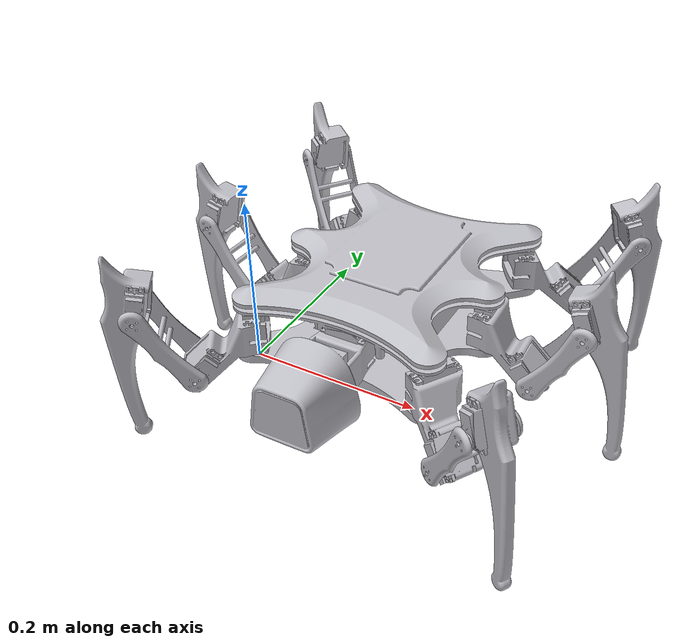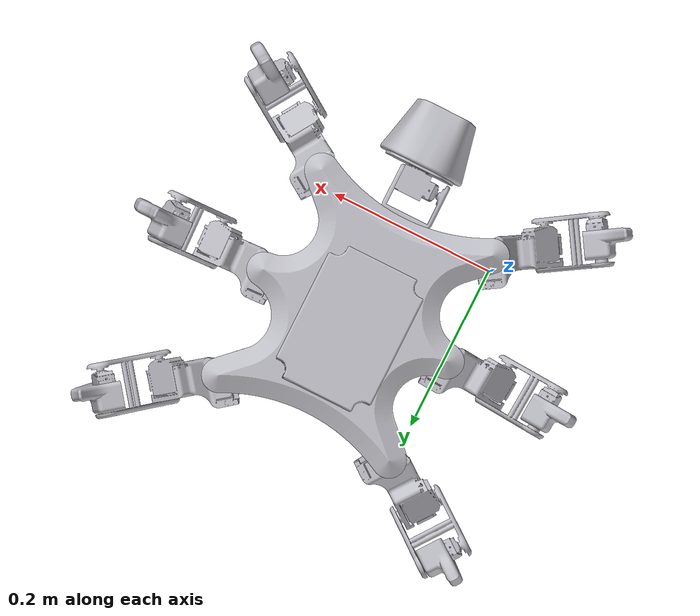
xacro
<?xml version="1.0" ?>
<robot name="Hexapod_Robot" xmlns:xacro="http://www.ros.org/wiki/xacro">

<xacro:include filename="$(find Hexapod_Robot_description)/urdf/materials.xacro" />
<xacro:include filename="$(find Hexapod_Robot_description)/urdf/Hexapod_Robot.ros2control" />
<xacro:include filename="$(find Hexapod_Robot_description)/urdf/Hexapod_Robot.gazebo" />

<!-- Massless root frame at ground level. KDL cannot have inertia on the root
     link, and controllers/nav expect a base_footprint; base_link carries the
     real mass and hangs off this. -->
<link name="base_footprint"/>

<joint name="base_footprint_joint" type="fixed">
  <origin xyz="0 0 0" rpy="0 0 0"/>
  <parent link="base_footprint"/>
  <child link="base_link"/>
</joint>

<link name="base_link">
  <inertial>
    <origin xyz="0.11456741037796862 0.1087879851109223 0.05265501684792295" rpy="0 0 0"/>
    <mass value="11.924165027690854"/>
    <inertia ixx="0.104112" iyy="0.070049" izz="0.13759" ixy="-7e-06" iyz="-0.000382" ixz="-0.000256"/>
  </inertial>
  <visual>
    <origin xyz="0 0 0" rpy="0 0 0"/>
    <geometry>
      <mesh filename="file://$(find Hexapod_Robot_description)/meshes/base_link.stl" scale="0.001 0.001 0.001"/>
    </geometry>
    <material name="silver"/>
  </visual>
  <collision>
    <origin xyz="0 0 0" rpy="0 0 0"/>
    <geometry>
      <mesh filename="file://$(find Hexapod_Robot_description)/meshes/base_link.stl" scale="0.001 0.001 0.001"/>
    </geometry>
  </collision>
</link>

<link name="left_hip_swing_forward_back1_link_1">
  <inertial>
    <origin xyz="0.02722355354628611 -0.005765123935482315 -0.05103630040946177" rpy="0 0 0"/>
    <mass value="1.0039554041082914"/>
    <inertia ixx="0.00093" iyy="0.00117" izz="0.001002" ixy="0.00025" iyz="-0.000246" ixz="0.00046"/>
  </inertial>
  <visual>
    <origin xyz="-0.223004 0.015003 -0.080704" rpy="0 0 0"/>
    <geometry>
      <mesh filename="file://$(find Hexapod_Robot_description)/meshes/left_hip_swing_forward_back1_link_1.stl" scale="0.001 0.001 0.001"/>
    </geometry>
    <material name="silver"/>
  </visual>
  <collision>
    <origin xyz="-0.223004 0.015003 -0.080704" rpy="0 0 0"/>
    <geometry>
      <mesh filename="file://$(find Hexapod_Robot_description)/meshes/left_hip_swing_forward_back1_link_1.stl" scale="0.001 0.001 0.001"/>
    </geometry>
  </collision>
</link>

<link name="left_hip_swing_forward_back2_link_1">
  <inertial>
    <origin xyz="0.026458833582975738 0.008619073243331582 -0.05103630040946182" rpy="0 0 0"/>
    <mass value="1.0039554041082914"/>
    <inertia ixx="0.000773" iyy="0.001327" izz="0.001002" ixy="2.1e-05" iyz="1.7e-05" ixz="0.000521"/>
  </inertial>
  <visual>
    <origin xyz="-0.231004 -0.114997 -0.080704" rpy="0 0 0"/>
    <geometry>
      <mesh filename="file://$(find Hexapod_Robot_description)/meshes/left_hip_swing_forward_back2_link_1.stl" scale="0.001 0.001 0.001"/>
    </geometry>
    <material name="silver"/>
  </visual>
  <collision>
    <origin xyz="-0.231004 -0.114997 -0.080704" rpy="0 0 0"/>
    <geometry>
      <mesh filename="file://$(find Hexapod_Robot_description)/meshes/left_hip_swing_forward_back2_link_1.stl" scale="0.001 0.001 0.001"/>
    </geometry>
  </collision>
</link>

<link name="left_hip_swing_forward_back3_link_1">
  <inertial>
    <origin xyz="0.02332648436599366 0.015173456755262688 -0.051036300409461735" rpy="0 0 0"/>
    <mass value="1.0039554041082914"/>
    <inertia ixx="0.000799" iyy="0.0013" izz="0.001002" ixy="-0.00012" iyz="0.000151" ixz="0.000499"/>
  </inertial>
  <visual>
    <origin xyz="-0.223004 -0.244997 -0.080704" rpy="0 0 0"/>
    <geometry>
      <mesh filename="file://$(find Hexapod_Robot_description)/meshes/left_hip_swing_forward_back3_link_1.stl" scale="0.001 0.001 0.001"/>
    </geometry>
    <material name="silver"/>
  </visual>
  <collision>
    <origin xyz="-0.223004 -0.244997 -0.080704" rpy="0 0 0"/>
    <geometry>
      <mesh filename="file://$(find Hexapod_Robot_description)/meshes/left_hip_swing_forward_back3_link_1.stl" scale="0.001 0.001 0.001"/>
    </geometry>
  </collision>
</link>

<link name="left_tibia_knee1_link_1">
  <inertial>
    <origin xyz="0.03192935357853338 0.01026326859326153 0.04206380119937546" rpy="0 0 0"/>
    <mass value="0.23887332143395074"/>
    <inertia ixx="0.000385" iyy="0.000312" izz="0.00027" ixy="-2.8e-05" iyz="3.8e-05" ixz="-0.00012"/>
  </inertial>
  <visual>
    <origin xyz="-0.278581 0.064128 -0.005487" rpy="0 0 0"/>
    <geometry>
      <mesh filename="file://$(find Hexapod_Robot_description)/meshes/left_tibia_knee1_link_1.stl" scale="0.001 0.001 0.001"/>
    </geometry>
    <material name="silver"/>
  </visual>
  <collision>
    <origin xyz="-0.278581 0.064128 -0.005487" rpy="0 0 0"/>
    <geometry>
      <mesh filename="file://$(find Hexapod_Robot_description)/meshes/left_tibia_knee1_link_1.stl" scale="0.001 0.001 0.001"/>
    </geometry>
  </collision>
</link>

<link name="left_tibia_knee2_link_1">
  <inertial>
    <origin xyz="0.022519573557786943 0.024852970410265546 0.04206380119937539" rpy="0 0 0"/>
    <mass value="0.23887332143395074"/>
    <inertia ixx="0.000391" iyy="0.000306" izz="0.00027" ixy="1.8e-05" iyz="-2.7e-05" ixz="-0.000123"/>
  </inertial>
  <visual>
    <origin xyz="-0.303698 -0.100242 -0.005487" rpy="0 0 0"/>
    <geometry>
      <mesh filename="file://$(find Hexapod_Robot_description)/meshes/left_tibia_knee2_link_1.stl" scale="0.001 0.001 0.001"/>
    </geometry>
    <material name="silver"/>
  </visual>
  <collision>
    <origin xyz="-0.303698 -0.100242 -0.005487" rpy="0 0 0"/>
    <geometry>
      <mesh filename="file://$(find Hexapod_Robot_description)/meshes/left_tibia_knee2_link_1.stl" scale="0.001 0.001 0.001"/>
    </geometry>
  </collision>
</link>

<link name="left_tibia_knee3_link_1">
  <inertial>
    <origin xyz="0.0202508543973397 0.03234772001410513 0.03791633557601756" rpy="0 0 0"/>
    <mass value="0.23887332143395074"/>
    <inertia ixx="0.000347" iyy="0.000313" izz="0.000307" ixy="2.2e-05" iyz="-6.3e-05" ixz="-0.000123"/>
  </inertial>
  <visual>
    <origin xyz="-0.29704 -0.24956 -0.005487" rpy="0 0 0"/>
    <geometry>
      <mesh filename="file://$(find Hexapod_Robot_description)/meshes/left_tibia_knee3_link_1.stl" scale="0.001 0.001 0.001"/>
    </geometry>
    <material name="silver"/>
  </visual>
  <collision>
    <origin xyz="-0.29704 -0.24956 -0.005487" rpy="0 0 0"/>
    <geometry>
      <mesh filename="file://$(find Hexapod_Robot_description)/meshes/left_tibia_knee3_link_1.stl" scale="0.001 0.001 0.001"/>
    </geometry>
  </collision>
</link>

<link name="femur_lift_leg3_link_1">
  <inertial>
    <origin xyz="-0.0001900785298836194 0.02982560287376279 -0.027371578569205093" rpy="0 0 0"/>
    <mass value="0.9037080537423837"/>
    <inertia ixx="0.003075" iyy="0.003177" izz="0.000258" ixy="-1.5e-05" iyz="7.2e-05" ixz="0.000391"/>
  </inertial>
  <visual>
    <origin xyz="-0.355 -0.276954 -0.082278" rpy="0 0 0"/>
    <geometry>
      <mesh filename="file://$(find Hexapod_Robot_description)/meshes/femur_lift_leg3_link_1.stl" scale="0.001 0.001 0.001"/>
    </geometry>
    <material name="silver"/>
  </visual>
  <collision>
    <origin xyz="-0.355 -0.276954 -0.082278" rpy="0 0 0"/>
    <geometry>
      <mesh filename="file://$(find Hexapod_Robot_description)/meshes/femur_lift_leg3_link_1.stl" scale="0.001 0.001 0.001"/>
    </geometry>
  </collision>
</link>

<link name="femur_lift_leg2_link_1">
  <inertial>
    <origin xyz="0.010864236412003236 0.030556222245335357 -0.02526616790998558" rpy="0 0 0"/>
    <mass value="0.9037080537423837"/>
    <inertia ixx="0.002918" iyy="0.003177" izz="0.000415" ixy="-6e-06" iyz="5.3e-05" ixz="0.000757"/>
  </inertial>
  <visual>
    <origin xyz="-0.356074 -0.108402 -0.090358" rpy="0 0 0"/>
    <geometry>
      <mesh filename="file://$(find Hexapod_Robot_description)/meshes/femur_lift_leg2_link_1.stl" scale="0.001 0.001 0.001"/>
    </geometry>
    <material name="silver"/>
  </visual>
  <collision>
    <origin xyz="-0.356074 -0.108402 -0.090358" rpy="0 0 0"/>
    <geometry>
      <mesh filename="file://$(find Hexapod_Robot_description)/meshes/femur_lift_leg2_link_1.stl" scale="0.001 0.001 0.001"/>
    </geometry>
  </collision>
</link>

<link name="femur_lift_leg1_link_1">
  <inertial>
    <origin xyz="0.02456260276582528 0.020645162698077882 -0.025263963458400346" rpy="0 0 0"/>
    <mass value="0.9037080537423837"/>
    <inertia ixx="0.002978" iyy="0.003117" izz="0.000415" ixy="0.000109" iyz="-0.000333" ixz="0.000682"/>
  </inertial>
  <visual>
    <origin xyz="-0.328021 0.08325 -0.090358" rpy="0 0 0"/>
    <geometry>
      <mesh filename="file://$(find Hexapod_Robot_description)/meshes/femur_lift_leg1_link_1.stl" scale="0.001 0.001 0.001"/>
    </geometry>
    <material name="silver"/>
  </visual>
  <collision>
    <origin xyz="-0.328021 0.08325 -0.090358" rpy="0 0 0"/>
    <geometry>
      <mesh filename="file://$(find Hexapod_Robot_description)/meshes/femur_lift_leg1_link_1.stl" scale="0.001 0.001 0.001"/>
    </geometry>
  </collision>
</link>

<link name="right_hip_swing_forward_back1_link_1">
  <inertial>
    <origin xyz="-0.024803341322268392 -0.012598853342512576 -0.05113326775181333" rpy="0 0 0"/>
    <mass value="1.0061122351650025"/>
    <inertia ixx="0.001069" iyy="0.001028" izz="0.000999" ixy="-0.000275" iyz="-0.000354" ixz="-0.00038"/>
  </inertial>
  <visual>
    <origin xyz="-0.007004 0.015003 -0.080704" rpy="0 0 0"/>
    <geometry>
      <mesh filename="file://$(find Hexapod_Robot_description)/meshes/right_hip_swing_forward_back1_link_1.stl" scale="0.001 0.001 0.001"/>
    </geometry>
    <material name="silver"/>
  </visual>
  <collision>
    <origin xyz="-0.007004 0.015003 -0.080704" rpy="0 0 0"/>
    <geometry>
      <mesh filename="file://$(find Hexapod_Robot_description)/meshes/right_hip_swing_forward_back1_link_1.stl" scale="0.001 0.001 0.001"/>
    </geometry>
  </collision>
</link>

<link name="right_hip_swing_forward_back2_link_1">
  <inertial>
    <origin xyz="-0.027779755467817333 0.0014907000781658047 -0.051133267751813566" rpy="0 0 0"/>
    <mass value="1.0061122351650025"/>
    <inertia ixx="0.00082" iyy="0.001277" izz="0.000999" ixy="-0.000155" iyz="-0.000117" ixz="-0.000506"/>
  </inertial>
  <visual>
    <origin xyz="0.000996 -0.114997 -0.080704" rpy="0 0 0"/>
    <geometry>
      <mesh filename="file://$(find Hexapod_Robot_description)/meshes/right_hip_swing_forward_back2_link_1.stl" scale="0.001 0.001 0.001"/>
    </geometry>
    <material name="silver"/>
  </visual>
  <collision>
    <origin xyz="0.000996 -0.114997 -0.080704" rpy="0 0 0"/>
    <geometry>
      <mesh filename="file://$(find Hexapod_Robot_description)/meshes/right_hip_swing_forward_back2_link_1.stl" scale="0.001 0.001 0.001"/>
    </geometry>
  </collision>
</link>

<link name="right_tibia_knee1_link_1">
  <inertial>
    <origin xyz="-0.03503037349570142 0.001013918465166172 0.040954233568781466" rpy="0 0 0"/>
    <mass value="0.23887342839275658"/>
    <inertia ixx="0.000359" iyy="0.000327" izz="0.00028" ixy="3.8e-05" iyz="7.1e-05" ixz="0.00011"/>
  </inertial>
  <visual>
    <origin xyz="0.033393 0.07637 -0.006083" rpy="0 0 0"/>
    <geometry>
      <mesh filename="file://$(find Hexapod_Robot_description)/meshes/right_tibia_knee1_link_1.stl" scale="0.001 0.001 0.001"/>
    </geometry>
    <material name="silver"/>
  </visual>
  <collision>
    <origin xyz="0.033393 0.07637 -0.006083" rpy="0 0 0"/>
    <geometry>
      <mesh filename="file://$(find Hexapod_Robot_description)/meshes/right_tibia_knee1_link_1.stl" scale="0.001 0.001 0.001"/>
    </geometry>
  </collision>
</link>

<link name="right_tibia_knee2_link_1">
  <inertial>
    <origin xyz="-0.029815774022840608 0.018077106294382014 0.040955750523917034" rpy="0 0 0"/>
    <mass value="0.23887342839275658"/>
    <inertia ixx="0.000384" iyy="0.000302" izz="0.00028" ixy="5e-06" iyz="6e-06" ixz="0.00013"/>
  </inertial>
  <visual>
    <origin xyz="0.066664 -0.08205 -0.006083" rpy="0 0 0"/>
    <geometry>
      <mesh filename="file://$(find Hexapod_Robot_description)/meshes/right_tibia_knee2_link_1.stl" scale="0.001 0.001 0.001"/>
    </geometry>
    <material name="silver"/>
  </visual>
  <collision>
    <origin xyz="0.066664 -0.08205 -0.006083" rpy="0 0 0"/>
    <geometry>
      <mesh filename="file://$(find Hexapod_Robot_description)/meshes/right_tibia_knee2_link_1.stl" scale="0.001 0.001 0.001"/>
    </geometry>
  </collision>
</link>

<link name="right_hip_swing_forward_back3_link_1">
  <inertial>
    <origin xyz="-0.027537261742744325 0.003954252827174848 -0.05113326775181348" rpy="0 0 0"/>
    <mass value="1.0061122351650025"/>
    <inertia ixx="0.000796" iyy="0.001301" izz="0.000999" ixy="-0.000113" iyz="-7.1e-05" ixz="-0.000515"/>
  </inertial>
  <visual>
    <origin xyz="-0.007004 -0.244997 -0.080704" rpy="0 0 0"/>
    <geometry>
      <mesh filename="file://$(find Hexapod_Robot_description)/meshes/right_hip_swing_forward_back3_link_1.stl" scale="0.001 0.001 0.001"/>
    </geometry>
    <material name="silver"/>
  </visual>
  <collision>
    <origin xyz="-0.007004 -0.244997 -0.080704" rpy="0 0 0"/>
    <geometry>
      <mesh filename="file://$(find Hexapod_Robot_description)/meshes/right_hip_swing_forward_back3_link_1.stl" scale="0.001 0.001 0.001"/>
    </geometry>
  </collision>
</link>

<link name="right_tibia_knee3_link_1">
  <inertial>
    <origin xyz="-0.027980158894274215 0.02326756621286863 0.04094322521168447" rpy="0 0 0"/>
    <mass value="0.23887342839275658"/>
    <inertia ixx="0.000384" iyy="0.000302" izz="0.00028" ixy="-2e-06" iyz="-5e-06" ixz="0.00013"/>
  </inertial>
  <visual>
    <origin xyz="0.061333 -0.218018 -0.006083" rpy="0 0 0"/>
    <geometry>
      <mesh filename="file://$(find Hexapod_Robot_description)/meshes/right_tibia_knee3_link_1.stl" scale="0.001 0.001 0.001"/>
    </geometry>
    <material name="silver"/>
  </visual>
  <collision>
    <origin xyz="0.061333 -0.218018 -0.006083" rpy="0 0 0"/>
    <geometry>
      <mesh filename="file://$(find Hexapod_Robot_description)/meshes/right_tibia_knee3_link_1.stl" scale="0.001 0.001 0.001"/>
    </geometry>
  </collision>
</link>

<link name="femur_right_leg1_link_1">
  <inertial>
    <origin xyz="-0.023484497219367045 0.012827089337785716 -0.027978023883439902" rpy="0 0 0"/>
    <mass value="0.9038602883439664"/>
    <inertia ixx="0.003153" iyy="0.00313" izz="0.000234" ixy="-4e-05" iyz="-0.000234" ixz="-0.000181"/>
  </inertial>
  <visual>
    <origin xyz="0.079719 0.108345 -0.088768" rpy="0 0 0"/>
    <geometry>
      <mesh filename="file://$(find Hexapod_Robot_description)/meshes/femur_right_leg1_link_1.stl" scale="0.001 0.001 0.001"/>
    </geometry>
    <material name="silver"/>
  </visual>
  <collision>
    <origin xyz="0.079719 0.108345 -0.088768" rpy="0 0 0"/>
    <geometry>
      <mesh filename="file://$(find Hexapod_Robot_description)/meshes/femur_right_leg1_link_1.stl" scale="0.001 0.001 0.001"/>
    </geometry>
  </collision>
</link>

<link name="femur_right_leg2_link_1">
  <inertial>
    <origin xyz="-0.013925159277990817 0.02285051194514176 -0.027978506928304364" rpy="0 0 0"/>
    <mass value="0.9038602883439664"/>
    <inertia ixx="0.003113" iyy="0.003171" izz="0.000234" ixy="-3e-05" iyz="-0.000112" ixz="-0.000274"/>
  </inertial>
  <visual>
    <origin xyz="0.122756 -0.077206 -0.08877" rpy="0 0 0"/>
    <geometry>
      <mesh filename="file://$(find Hexapod_Robot_description)/meshes/femur_right_leg2_link_1.stl" scale="0.001 0.001 0.001"/>
    </geometry>
    <material name="silver"/>
  </visual>
  <collision>
    <origin xyz="0.122756 -0.077206 -0.08877" rpy="0 0 0"/>
    <geometry>
      <mesh filename="file://$(find Hexapod_Robot_description)/meshes/femur_right_leg2_link_1.stl" scale="0.001 0.001 0.001"/>
    </geometry>
  </collision>
</link>

<link name="femur_right_leg3_link_1">
  <inertial>
    <origin xyz="-0.011724159547273669 0.026705473905582006 -0.02799101754893424" rpy="0 0 0"/>
    <mass value="0.9038602883439664"/>
    <inertia ixx="0.003108" iyy="0.003176" izz="0.000234" ixy="-2.5e-05" iyz="-8.7e-05" ixz="-0.000282"/>
  </inertial>
  <visual>
    <origin xyz="0.117523 -0.220791 -0.088757" rpy="0 0 0"/>
    <geometry>
      <mesh filename="file://$(find Hexapod_Robot_description)/meshes/femur_right_leg3_link_1.stl" scale="0.001 0.001 0.001"/>
    </geometry>
    <material name="silver"/>
  </visual>
  <collision>
    <origin xyz="0.117523 -0.220791 -0.088757" rpy="0 0 0"/>
    <geometry>
      <mesh filename="file://$(find Hexapod_Robot_description)/meshes/femur_right_leg3_link_1.stl" scale="0.001 0.001 0.001"/>
    </geometry>
  </collision>
</link>

<link name="face_bracet_base_link_1">
  <inertial>
    <origin xyz="-0.010814042357898693 -0.014482023912285253 0.02150847396145008" rpy="0 0 0"/>
    <mass value="0.6417963770855601"/>
    <inertia ixx="0.000382" iyy="0.000406" izz="0.000523" ixy="-1.1e-05" iyz="-1.3e-05" ixz="-4e-06"/>
  </inertial>
  <visual>
    <origin xyz="-0.124241 -0.005792 -0.027095" rpy="0 0 0"/>
    <geometry>
      <mesh filename="file://$(find Hexapod_Robot_description)/meshes/face_bracet_base_link_1.stl" scale="0.001 0.001 0.001"/>
    </geometry>
    <material name="silver"/>
  </visual>
  <collision>
    <origin xyz="-0.124241 -0.005792 -0.027095" rpy="0 0 0"/>
    <geometry>
      <mesh filename="file://$(find Hexapod_Robot_description)/meshes/face_bracet_base_link_1.stl" scale="0.001 0.001 0.001"/>
    </geometry>
  </collision>
</link>

<link name="face_link_1">
  <inertial>
    <origin xyz="0.03378752080746006 -0.029890278010824445 0.032664038437643546" rpy="0 0 0"/>
    <mass value="1.8822427069022054"/>
    <inertia ixx="0.002704" iyy="0.002592" izz="0.002599" ixy="3.5e-05" iyz="0.000166" ixz="-2.3e-05"/>
  </inertial>
  <visual>
    <origin xyz="-0.088412 0.049262 -0.041775" rpy="0 0 0"/>
    <geometry>
      <mesh filename="file://$(find Hexapod_Robot_description)/meshes/face_link_1.stl" scale="0.001 0.001 0.001"/>
    </geometry>
    <material name="silver"/>
  </visual>
  <collision>
    <origin xyz="-0.088412 0.049262 -0.041775" rpy="0 0 0"/>
    <geometry>
      <mesh filename="file://$(find Hexapod_Robot_description)/meshes/face_link_1.stl" scale="0.001 0.001 0.001"/>
    </geometry>
  </collision>
</link>

<joint name="leg_l1_coxa" type="revolute">
  <origin xyz="0.223004 -0.015003 0.080704" rpy="0 0 -0.259239"/>
  <parent link="base_link"/>
  <child link="left_hip_swing_forward_back1_link_1"/>
  <axis xyz="0.0 0.0 1.0"/>
  <limit upper="0.523599" lower="-0.523599" effort="100" velocity="100"/>
</joint>

<joint name="leg_l2_coxa" type="revolute">
  <origin xyz="0.231004 0.114997 0.080704" rpy="0 0 -0.174847"/>
  <parent link="base_link"/>
  <child link="left_hip_swing_forward_back2_link_1"/>
  <axis xyz="0.0 0.0 1.0"/>
  <limit upper="0.523599" lower="-0.523599" effort="100" velocity="100"/>
</joint>

<joint name="leg_l3_coxa" type="revolute">
  <origin xyz="0.223004 0.244997 0.080704" rpy="0 0 0.174892"/>
  <parent link="base_link"/>
  <child link="left_hip_swing_forward_back3_link_1"/>
  <axis xyz="0.0 0.0 1.0"/>
  <limit upper="0.523599" lower="-0.523599" effort="100" velocity="100"/>
</joint>

<joint name="leg_l1_femur" type="revolute">
  <origin xyz="0.055577 -0.049125 -0.075217" rpy="0 0 0"/>
  <parent link="left_hip_swing_forward_back1_link_1"/>
  <child link="left_tibia_knee1_link_1"/>
  <axis xyz="-0.304951 -0.952352 0.005443"/>
  <limit upper="0.0" lower="-1.570796" effort="100" velocity="100"/>
</joint>

<joint name="leg_l2_femur" type="revolute">
  <origin xyz="0.072694 -0.014755 -0.075217" rpy="0 0 0"/>
  <parent link="left_hip_swing_forward_back2_link_1"/>
  <child link="left_tibia_knee2_link_1"/>
  <axis xyz="0.212081 -0.977237 0.005443"/>
  <limit upper="0.0" lower="-1.570796" effort="100" velocity="100"/>
</joint>

<joint name="leg_l3_femur" type="revolute">
  <origin xyz="0.074036 0.004563 -0.075217" rpy="0 0 0"/>
  <parent link="left_hip_swing_forward_back3_link_1"/>
  <child link="left_tibia_knee3_link_1"/>
  <axis xyz="0.457782 -0.889048 0.005443"/>
  <limit upper="0.0" lower="-1.570796" effort="100" velocity="100"/>
</joint>

<joint name="leg_l3_tibia" type="revolute">
  <origin xyz="0.05796 0.027394 0.076791" rpy="0 0 0"/>
  <parent link="left_tibia_knee3_link_1"/>
  <child link="femur_lift_leg3_link_1"/>
  <axis xyz="0.457782 -0.889048 0.005443"/>
  <limit upper="0.698132" lower="-0.349066" effort="100" velocity="100"/>
</joint>

<joint name="leg_l2_tibia" type="revolute">
  <origin xyz="0.052376 0.00816 0.084871" rpy="0 0 0"/>
  <parent link="left_tibia_knee2_link_1"/>
  <child link="femur_lift_leg2_link_1"/>
  <axis xyz="0.212081 -0.977237 0.005443"/>
  <limit upper="0.698132" lower="-0.349066" effort="100" velocity="100"/>
</joint>

<joint name="leg_l1_tibia" type="revolute">
  <origin xyz="0.04944 -0.019122 0.084871" rpy="0 0 0"/>
  <parent link="left_tibia_knee1_link_1"/>
  <child link="femur_lift_leg1_link_1"/>
  <axis xyz="-0.304951 -0.952352 0.005443"/>
  <limit upper="0.698132" lower="-0.349066" effort="100" velocity="100"/>
</joint>

<joint name="leg_r1_coxa" type="revolute">
  <origin xyz="0.007004 -0.015003 0.080704" rpy="0 0 -0.012547"/>
  <parent link="base_link"/>
  <child link="right_hip_swing_forward_back1_link_1"/>
  <axis xyz="0.0 0.0 1.0"/>
  <limit upper="0.523599" lower="-0.523599" effort="100" velocity="100"/>
</joint>

<joint name="leg_r2_coxa" type="revolute">
  <origin xyz="-0.000996 0.114997 0.080704" rpy="0 0 -0.101613"/>
  <parent link="base_link"/>
  <child link="right_hip_swing_forward_back2_link_1"/>
  <axis xyz="0.0 0.0 1.0"/>
  <limit upper="0.523599" lower="-0.523599" effort="100" velocity="100"/>
</joint>

<joint name="leg_r1_femur" type="revolute">
  <origin xyz="-0.040397 -0.061367 -0.074621" rpy="0 0 0"/>
  <parent link="right_hip_swing_forward_back1_link_1"/>
  <child link="right_tibia_knee1_link_1"/>
  <axis xyz="0.539916 -0.841705 0.004792"/>
  <limit upper="1.570796" lower="0.0" effort="100" velocity="100"/>
</joint>

<joint name="leg_r2_femur" type="revolute">
  <origin xyz="-0.065668 -0.032947 -0.074621" rpy="0 0 0"/>
  <parent link="right_hip_swing_forward_back2_link_1"/>
  <child link="right_tibia_knee2_link_1"/>
  <axis xyz="0.046728 -0.998896 0.004792"/>
  <limit upper="1.570796" lower="0.0" effort="100" velocity="100"/>
</joint>

<joint name="leg_r3_coxa" type="revolute">
  <origin xyz="0.007004 0.244997 0.080704" rpy="0 0 -0.588333"/>
  <parent link="base_link"/>
  <child link="right_hip_swing_forward_back3_link_1"/>
  <axis xyz="0.0 0.0 1.0"/>
  <limit upper="0.523599" lower="-0.523599" effort="100" velocity="100"/>
</joint>

<joint name="leg_r3_femur" type="revolute">
  <origin xyz="-0.068337 -0.026979 -0.074621" rpy="0 0 0"/>
  <parent link="right_hip_swing_forward_back3_link_1"/>
  <child link="right_tibia_knee3_link_1"/>
  <axis xyz="-0.042253 -0.999095 0.004792"/>
  <limit upper="1.570796" lower="0.0" effort="100" velocity="100"/>
</joint>

<joint name="leg_r1_tibia" type="revolute">
  <origin xyz="-0.046326 -0.031975 0.082685" rpy="0 0 0"/>
  <parent link="right_tibia_knee1_link_1"/>
  <child link="femur_right_leg1_link_1"/>
  <axis xyz="0.539916 -0.841705 0.004792"/>
  <limit upper="0.349066" lower="-0.698132" effort="100" velocity="100"/>
</joint>

<joint name="leg_r2_tibia" type="revolute">
  <origin xyz="-0.056092 -0.004844 0.082687" rpy="0 0 0"/>
  <parent link="right_tibia_knee2_link_1"/>
  <child link="femur_right_leg2_link_1"/>
  <axis xyz="0.046728 -0.998896 0.004792"/>
  <limit upper="0.349066" lower="-0.698132" effort="100" velocity="100"/>
</joint>

<joint name="leg_r3_tibia" type="revolute">
  <origin xyz="-0.05619 0.002773 0.082674" rpy="0 0 0"/>
  <parent link="right_tibia_knee3_link_1"/>
  <child link="femur_right_leg3_link_1"/>
  <axis xyz="-0.042253 -0.999095 0.004792"/>
  <limit upper="0.349066" lower="-0.698132" effort="100" velocity="100"/>
</joint>

<joint name="face_pan" type="revolute">
  <origin xyz="0.124241 0.005792 0.027095" rpy="0 0 0.029124"/>
  <parent link="base_link"/>
  <child link="face_bracet_base_link_1"/>
  <axis xyz="-0.0 -0.0 1.0"/>
  <limit upper="0.319942" lower="-0.378190" effort="100" velocity="100"/>
</joint>

<joint name="face_tilt" type="revolute">
  <origin xyz="-0.035829 -0.055054 0.01468" rpy="0.362002 -0.010440 -0.001911"/>
  <parent link="face_bracet_base_link_1"/>
  <child link="face_link_1"/>
  <axis xyz="-0.999566 0.029467 0.0"/>
  <limit upper="0.623945" lower="-0.423252" effort="100" velocity="100"/>
</joint>

<link name="face_camera_link">
  <inertial>
    <origin xyz="0 0 0" rpy="0 0 0"/>
    <mass value="0.001"/>
    <inertia ixx="1e-7" ixy="0.0" ixz="0.0" iyy="1e-7" iyz="0.0" izz="1e-7"/>
  </inertial>
</link>
<joint name="face_camera_joint" type="fixed">
  <origin xyz="0.030837 -0.099027 0.057062" rpy="-0.000309 -0.362146 -1.599897"/>
  <parent link="face_link_1"/>
  <child link="face_camera_link"/>
</joint>
<gazebo reference="face_camera_joint">
  <disableFixedJointLumping>true</disableFixedJointLumping>
  <preserveFixedJoint>true</preserveFixedJoint>
</gazebo>

<link name="face_camera_optical_frame"/>
<joint name="face_camera_optical_joint" type="fixed">
  <origin xyz="0 0 0" rpy="-1.570796 0 -1.570796"/>
  <parent link="face_camera_link"/>
  <child link="face_camera_optical_frame"/>
</joint>

<xacro:macro name="foot_frame" params="leg parent x y z">
  <link name="${leg}_foot">
    <!-- rounded rubber foot pad: a stable, high-friction ground contact
         (replaces the sharp mesh-tip point contact that caused slip) -->
    <collision name="${leg}_foot_collision">
      <origin xyz="0 0 0" rpy="0 0 0"/>
      <geometry><sphere radius="0.013"/></geometry>
    </collision>
    <inertial>
      <mass value="0.02"/>
      <inertia ixx="1e-6" iyy="1e-6" izz="1e-6" ixy="0" ixz="0" iyz="0"/>
    </inertial>
  </link>
  <joint name="${leg}_foot_joint" type="fixed">
    <origin xyz="${x} ${y} ${z}" rpy="0 0 0"/>
    <parent link="${parent}"/>
    <child link="${leg}_foot"/>
  </joint>
  <!-- keep the foot link separate (don't lump into the femur) so its collision
       keeps the name the contact sensor references -->
  <gazebo reference="${leg}_foot_joint">
    <preserveFixedJoint>true</preserveFixedJoint>
    <disableFixedJointLumping>true</disableFixedJointLumping>
  </gazebo>
  <!-- high-grip foot pad + contact sensor (foot-ground touch detection) -->
  <gazebo reference="${leg}_foot">
    <mu1>1.5</mu1>
    <mu2>1.5</mu2>
    <kp>1000000.0</kp>
    <kd>100.0</kd>
    <minDepth>0.001</minDepth>
    <maxVel>0.0</maxVel>
    <sensor name="${leg}_contact" type="contact">
      <always_on>true</always_on>
      <update_rate>50</update_rate>
      <contact>
        <collision>${leg}_foot_collision_collision</collision>
      </contact>
      <topic>contact/${leg}</topic>
    </sensor>
  </gazebo>
</xacro:macro>

<xacro:foot_frame leg="leg_l1" parent="femur_lift_leg1_link_1"  x="0.0532"  y="0.0113" z="-0.1702"/>
<xacro:foot_frame leg="leg_l2" parent="femur_lift_leg2_link_1"  x="0.0403"  y="0.0368" z="-0.1702"/>
<xacro:foot_frame leg="leg_l3" parent="femur_lift_leg3_link_1"  x="0.0088"  y="0.0341" z="-0.1751"/>
<xacro:foot_frame leg="leg_r1" parent="femur_right_leg1_link_1" x="-0.0276" y="0.0108" z="-0.1760"/>
<xacro:foot_frame leg="leg_r2" parent="femur_right_leg2_link_1" x="-0.0185" y="0.0232" z="-0.1760"/>
<xacro:foot_frame leg="leg_r3" parent="femur_right_leg3_link_1" x="-0.0162" y="0.0274" z="-0.1760"/>

</robot>

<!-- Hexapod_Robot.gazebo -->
<robot name="Hexapod_Robot" xmlns:xacro="http://www.ros.org/wiki/xacro" >

<xacro:property name="body_color" value="Gazebo/Silver" />

<gazebo reference="base_link">
  <material>${body_color}</material>
  <mu1>1.0</mu1>
  <mu2>1.0</mu2>
  <self_collide>true</self_collide>
  <gravity>true</gravity>
  <!-- IMU on the body (simulates the real Adafruit BNO055): orientation +
       angular velocity + linear acceleration. Published on gz topic "imu". -->
  <sensor name="imu_sensor" type="imu">
    <always_on>true</always_on>
    <update_rate>100</update_rate>
    <topic>imu</topic>
    <gz_frame_id>base_link</gz_frame_id>
    <imu>
      <angular_velocity>
        <x><noise type="gaussian"><mean>0.0</mean><stddev>0.0003</stddev></noise></x>
        <y><noise type="gaussian"><mean>0.0</mean><stddev>0.0003</stddev></noise></y>
        <z><noise type="gaussian"><mean>0.0</mean><stddev>0.0003</stddev></noise></z>
      </angular_velocity>
      <linear_acceleration>
        <x><noise type="gaussian"><mean>0.0</mean><stddev>0.02</stddev></noise></x>
        <y><noise type="gaussian"><mean>0.0</mean><stddev>0.02</stddev></noise></y>
        <z><noise type="gaussian"><mean>0.0</mean><stddev>0.02</stddev></noise></z>
      </linear_acceleration>
    </imu>
  </sensor>
</gazebo>

<gazebo reference="left_hip_swing_forward_back1_link_1">
  <material>${body_color}</material>
  <mu1>1.0</mu1>
  <mu2>1.0</mu2>
  <self_collide>true</self_collide>
</gazebo>

<gazebo reference="left_hip_swing_forward_back2_link_1">
  <material>${body_color}</material>
  <mu1>1.0</mu1>
  <mu2>1.0</mu2>
  <self_collide>true</self_collide>
</gazebo>

<gazebo reference="left_hip_swing_forward_back3_link_1">
  <material>${body_color}</material>
  <mu1>1.0</mu1>
  <mu2>1.0</mu2>
  <self_collide>true</self_collide>
</gazebo>

<gazebo reference="left_tibia_knee1_link_1">
  <material>${body_color}</material>
  <mu1>1.0</mu1>
  <mu2>1.0</mu2>
  <self_collide>true</self_collide>
</gazebo>

<gazebo reference="left_tibia_knee2_link_1">
  <material>${body_color}</material>
  <mu1>1.0</mu1>
  <mu2>1.0</mu2>
  <self_collide>true</self_collide>
</gazebo>

<gazebo reference="left_tibia_knee3_link_1">
  <material>${body_color}</material>
  <mu1>1.0</mu1>
  <mu2>1.0</mu2>
  <self_collide>true</self_collide>
</gazebo>

<gazebo reference="femur_lift_leg3_link_1">
  <material>${body_color}</material>
  <mu1>1.0</mu1>
  <mu2>1.0</mu2>
  <self_collide>true</self_collide>
</gazebo>

<gazebo reference="femur_lift_leg2_link_1">
  <material>${body_color}</material>
  <mu1>1.0</mu1>
  <mu2>1.0</mu2>
  <self_collide>true</self_collide>
</gazebo>

<gazebo reference="femur_lift_leg1_link_1">
  <material>${body_color}</material>
  <mu1>1.0</mu1>
  <mu2>1.0</mu2>
  <self_collide>true</self_collide>
</gazebo>

<gazebo reference="right_hip_swing_forward_back1_link_1">
  <material>${body_color}</material>
  <mu1>1.0</mu1>
  <mu2>1.0</mu2>
  <self_collide>true</self_collide>
</gazebo>

<gazebo reference="right_hip_swing_forward_back2_link_1">
  <material>${body_color}</material>
  <mu1>1.0</mu1>
  <mu2>1.0</mu2>
  <self_collide>true</self_collide>
</gazebo>

<gazebo reference="right_tibia_knee1_link_1">
  <material>${body_color}</material>
  <mu1>1.0</mu1>
  <mu2>1.0</mu2>
  <self_collide>true</self_collide>
</gazebo>

<gazebo reference="right_tibia_knee2_link_1">
  <material>${body_color}</material>
  <mu1>1.0</mu1>
  <mu2>1.0</mu2>
  <self_collide>true</self_collide>
</gazebo>

<gazebo reference="right_hip_swing_forward_back3_link_1">
  <material>${body_color}</material>
  <mu1>1.0</mu1>
  <mu2>1.0</mu2>
  <self_collide>true</self_collide>
</gazebo>

<gazebo reference="right_tibia_knee3_link_1">
  <material>${body_color}</material>
  <mu1>1.0</mu1>
  <mu2>1.0</mu2>
  <self_collide>true</self_collide>
</gazebo>

<gazebo reference="femur_right_leg1_link_1">
  <material>${body_color}</material>
  <mu1>1.0</mu1>
  <mu2>1.0</mu2>
  <self_collide>true</self_collide>
</gazebo>

<gazebo reference="femur_right_leg2_link_1">
  <material>${body_color}</material>
  <mu1>1.0</mu1>
  <mu2>1.0</mu2>
  <self_collide>true</self_collide>
</gazebo>

<gazebo reference="femur_right_leg3_link_1">
  <material>${body_color}</material>
  <mu1>1.0</mu1>
  <mu2>1.0</mu2>
  <self_collide>true</self_collide>
</gazebo>

<gazebo reference="face_bracet_base_link_1">
  <material>${body_color}</material>
  <mu1>1.0</mu1>
  <mu2>1.0</mu2>
  <self_collide>true</self_collide>
</gazebo>

<gazebo reference="face_camera_link">
  <!-- The colour sensor also owns /face_camera/camera_info: Gazebo derives a
       sensor's camera_info topic from its image topic, and these are the
       intrinsics both streams share. -->
  <sensor name="face_camera_rgb" type="camera">
    <always_on>1</always_on>
    <update_rate>15</update_rate>
    <topic>face_camera/image</topic>
    <gz_frame_id>face_camera_optical_frame</gz_frame_id>
    <camera>
      <horizontal_fov>1.518</horizontal_fov>
      <image><width>640</width><height>480</height><format>R8G8B8</format></image>
      <clip><near>0.10</near><far>12.0</far></clip>
      <optical_frame_id>face_camera_optical_frame</optical_frame_id>
    </camera>
  </sensor>
  <sensor name="face_camera_depth" type="depth_camera">
    <always_on>1</always_on>
    <update_rate>15</update_rate>
    <topic>face_camera_depth/image</topic>
    <gz_frame_id>face_camera_optical_frame</gz_frame_id>
    <camera>
      <horizontal_fov>1.518</horizontal_fov>
      <image><width>640</width><height>480</height><format>R_FLOAT32</format></image>
      <clip><near>0.10</near><far>12.0</far></clip>
      <optical_frame_id>face_camera_optical_frame</optical_frame_id>
    </camera>
  </sensor>
</gazebo>

<!-- gz_ros2_control: runs a controller_manager inside Gazebo and exposes the
     joints declared in Hexapod_Robot.ros2control. Controllers are configured
     from config/controllers.yaml. -->
<gazebo>
  <plugin filename="gz_ros2_control-system"
          name="gz_ros2_control::GazeboSimROS2ControlPlugin">
    <parameters>$(find Hexapod_Robot_description)/config/controllers.yaml</parameters>
  </plugin>
</gazebo>

<gazebo>
  <plugin filename="gz-sim-imu-system" name="gz::sim::systems::Imu"/>
</gazebo>

<gazebo>
  <plugin filename="gz-sim-contact-system" name="gz::sim::systems::Contact"/>
</gazebo>

<!-- Sensors system: renders camera sensors (the face camera). Needs OpenGL. -->
<gazebo>
  <plugin filename="gz-sim-sensors-system" name="gz::sim::systems::Sensors">
    <render_engine>ogre2</render_engine>
  </plugin>
</gazebo>

<gazebo>
  <plugin filename="gz-sim-odometry-publisher-system"
          name="gz::sim::systems::OdometryPublisher">
    <odom_frame>odom_ground_truth</odom_frame>
    <robot_base_frame>base_footprint</robot_base_frame>
    <odom_publish_frequency>50</odom_publish_frequency>
    <dimensions>3</dimensions>
    <tf_topic>/model/Hexapod_Robot/odom_tf</tf_topic>
  </plugin>
</gazebo>

</robot>
